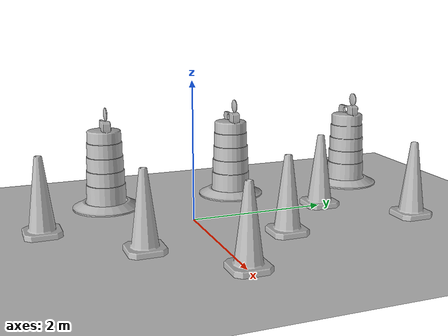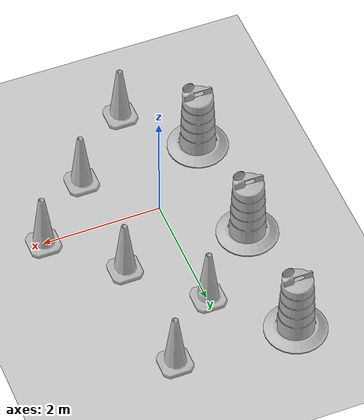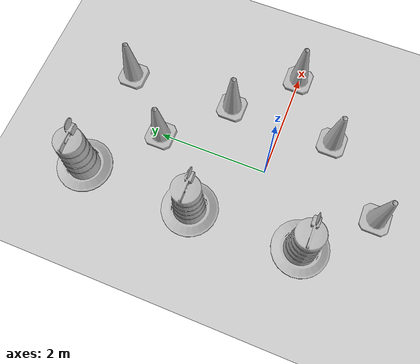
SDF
<sdf version="1.7">
 <world name="default">
  <light name="sun" type="directional">
   <pose>0 0 10 0 -0 0</pose>
   <diffuse>0.8 0.8 0.8 1</diffuse>
   <specular>0.2 0.2 0.2 1</specular>
   <attenuation>
    <range>1000</range>
    <constant>0.9</constant>
    <linear>0.01</linear>
    <quadratic>0.001</quadratic>
   </attenuation>
   <direction>-0.5 0.1 -0.9</direction>
   <spot><inner_angle>0</inner_angle><outer_angle>0</outer_angle><falloff>0</falloff></spot>
  </light>
  <model name="ground_plane">
   <static>1</static>
   <link name="link">
    <collision name="collision">
     <geometry><plane><normal>0 0 1</normal><size>100 100</size></plane></geometry>
     <surface><friction><ode><mu>100</mu><mu2>50</mu2></ode></friction></surface>
    </collision>
    <visual name="visual">
     <cast_shadows>0</cast_shadows>
     <geometry><plane><normal>0 0 1</normal><size>100 100</size></plane></geometry>
     <material>
      <script><uri>file://media/materials/scripts/gazebo.material</uri><name>Gazebo/Grey</name></script>
     </material>
    </visual>
   </link>
  </model>
  <gravity>0 0 -9.8</gravity>
  <magnetic_field>6e-06 2.3e-05 -4.2e-05</magnetic_field>
  <atmosphere type="adiabatic"/>
  <physics type="ode">
   <max_step_size>0.001</max_step_size>
   <real_time_factor>1</real_time_factor>
   <real_time_update_rate>1000</real_time_update_rate>
  </physics>
  <scene><ambient>0.4 0.4 0.4 1</ambient><background>0.7 0.7 0.7 1</background><shadows>1</shadows></scene>
  <audio><device>default</device></audio>
  <spherical_coordinates>
   <surface_model>EARTH_WGS84</surface_model>
   <latitude_deg>0</latitude_deg>
   <longitude_deg>0</longitude_deg>
   <elevation>0</elevation>
   <heading_deg>0</heading_deg>
  </spherical_coordinates>
  <model name="Construction Barrel">
   <link name="link">
    <inertial>
     <pose>0 0 0.4 0 -0 0</pose>
     <mass>500</mass>
     <inertia><ixx>51.2096</ixx><iyy>51.2096</iyy><izz>25</izz><ixy>0</ixy><ixz>0</ixz><iyz>0</iyz></inertia>
    </inertial>
    <collision name="collision">
     <geometry><mesh><uri>model://construction_barrel/meshes/construction_barrel.dae</uri></mesh></geometry>
    </collision>
    <visual name="visual">
     <geometry><mesh><uri>model://construction_barrel/meshes/construction_barrel.dae</uri></mesh></geometry>
    </visual>
   </link>
   <pose>-1.11997 0.994447 -2e-06 -4e-06 7e-06 -2.1e-05</pose>
  </model>
  <model name="Construction Barrel_0">
   <link name="link">
    <inertial>
     <pose>0 0 0.4 0 -0 0</pose>
     <mass>500</mass>
     <inertia><ixx>51.2096</ixx><iyy>51.2096</iyy><izz>25</izz><ixy>0</ixy><ixz>0</ixz><iyz>0</iyz></inertia>
    </inertial>
    <collision name="collision">
     <geometry><mesh><uri>model://construction_barrel/meshes/construction_barrel.dae</uri></mesh></geometry>
    </collision>
    <visual name="visual">
     <geometry><mesh><uri>model://construction_barrel/meshes/construction_barrel.dae</uri></mesh></geometry>
    </visual>
   </link>
   <pose>-1.06524 3.08028 -1e-06 2e-06 -2e-06 -1.8e-05</pose>
  </model>
  <model name="Construction Barrel_1">
   <link name="link">
    <inertial>
     <pose>0 0 0.4 0 -0 0</pose>
     <mass>500</mass>
     <inertia><ixx>51.2096</ixx><iyy>51.2096</iyy><izz>25</izz><ixy>0</ixy><ixz>0</ixz><iyz>0</iyz></inertia>
    </inertial>
    <collision name="collision">
     <geometry><mesh><uri>model://construction_barrel/meshes/construction_barrel.dae</uri></mesh></geometry>
    </collision>
    <visual name="visual">
     <geometry><mesh><uri>model://construction_barrel/meshes/construction_barrel.dae</uri></mesh></geometry>
    </visual>
   </link>
   <pose>-1.0841 -1.03653 1e-06 4e-06 3e-06 -1.9e-05</pose>
  </model>
  <model name="Construction Cone">
   <link name="link">
    <collision name="collision">
     <geometry>
      <mesh><scale>10 10 10</scale><uri>model://construction_cone/meshes/construction_cone.dae</uri></mesh>
     </geometry>
    </collision>
    <visual name="visual">
     <geometry>
      <mesh><scale>10 10 10</scale><uri>model://construction_cone/meshes/construction_cone.dae</uri></mesh>
     </geometry>
    </visual>
    <inertial>
     <inertia><ixx>1</ixx><ixy>0</ixy><ixz>0</ixz><iyy>1</iyy><iyz>0</iyz><izz>1</izz></inertia>
     <mass>1</mass>
    </inertial>
   </link>
   <pose>-0.130182 -2.0985 -0 0 -0 0</pose>
  </model>
  <model name="Construction Cone_0">
   <link name="link">
    <collision name="collision">
     <geometry>
      <mesh><scale>10 10 10</scale><uri>model://construction_cone/meshes/construction_cone.dae</uri></mesh>
     </geometry>
    </collision>
    <visual name="visual">
     <geometry>
      <mesh><scale>10 10 10</scale><uri>model://construction_cone/meshes/construction_cone.dae</uri></mesh>
     </geometry>
    </visual>
    <inertial>
     <inertia><ixx>1</ixx><ixy>0</ixy><ixz>0</ixz><iyy>1</iyy><iyz>0</iyz><izz>1</izz></inertia>
     <mass>1</mass>
    </inertial>
   </link>
   <pose>0.980063 -0.96758 -4e-06 4e-06 -1e-06 0</pose>
  </model>
  <model name="Construction Cone_1">
   <link name="link">
    <collision name="collision">
     <geometry>
      <mesh><scale>10 10 10</scale><uri>model://construction_cone/meshes/construction_cone.dae</uri></mesh>
     </geometry>
    </collision>
    <visual name="visual">
     <geometry>
      <mesh><scale>10 10 10</scale><uri>model://construction_cone/meshes/construction_cone.dae</uri></mesh>
     </geometry>
    </visual>
    <inertial>
     <inertia><ixx>1</ixx><ixy>0</ixy><ixz>0</ixz><iyy>1</iyy><iyz>0</iyz><izz>1</izz></inertia>
     <mass>1</mass>
    </inertial>
   </link>
   <pose>1.9989 0.018839 -0 0 -1e-06 0</pose>
  </model>
  <model name="Construction Cone_2">
   <link name="link">
    <collision name="collision">
     <geometry>
      <mesh><scale>10 10 10</scale><uri>model://construction_cone/meshes/construction_cone.dae</uri></mesh>
     </geometry>
    </collision>
    <visual name="visual">
     <geometry>
      <mesh><scale>10 10 10</scale><uri>model://construction_cone/meshes/construction_cone.dae</uri></mesh>
     </geometry>
    </visual>
    <inertial>
     <inertia><ixx>1</ixx><ixy>0</ixy><ixz>0</ixz><iyy>1</iyy><iyz>0</iyz><izz>1</izz></inertia>
     <mass>1</mass>
    </inertial>
   </link>
   <pose>0.986785 1.00469 -1e-05 0 -0 0</pose>
  </model>
  <model name="Construction Cone_3">
   <link name="link">
    <collision name="collision">
     <geometry>
      <mesh><scale>10 10 10</scale><uri>model://construction_cone/meshes/construction_cone.dae</uri></mesh>
     </geometry>
    </collision>
    <visual name="visual">
     <geometry>
      <mesh><scale>10 10 10</scale><uri>model://construction_cone/meshes/construction_cone.dae</uri></mesh>
     </geometry>
    </visual>
    <inertial>
     <inertia><ixx>1</ixx><ixy>0</ixy><ixz>0</ixz><iyy>1</iyy><iyz>0</iyz><izz>1</izz></inertia>
     <mass>1</mass>
    </inertial>
   </link>
   <pose>-0.020688 2.0304 -0 0 -0 0</pose>
  </model>
  <model name="Construction Cone_4">
   <link name="link">
    <collision name="collision">
     <geometry>
      <mesh><scale>10 10 10</scale><uri>model://construction_cone/meshes/construction_cone.dae</uri></mesh>
     </geometry>
    </collision>
    <visual name="visual">
     <geometry>
      <mesh><scale>10 10 10</scale><uri>model://construction_cone/meshes/construction_cone.dae</uri></mesh>
     </geometry>
    </visual>
    <inertial>
     <inertia><ixx>1</ixx><ixy>0</ixy><ixz>0</ixz><iyy>1</iyy><iyz>0</iyz><izz>1</izz></inertia>
     <mass>1</mass>
    </inertial>
   </link>
   <pose>0.939535 3.02522 -1e-05 -1e-06 0 0</pose>
  </model>
 </world>
</sdf>
